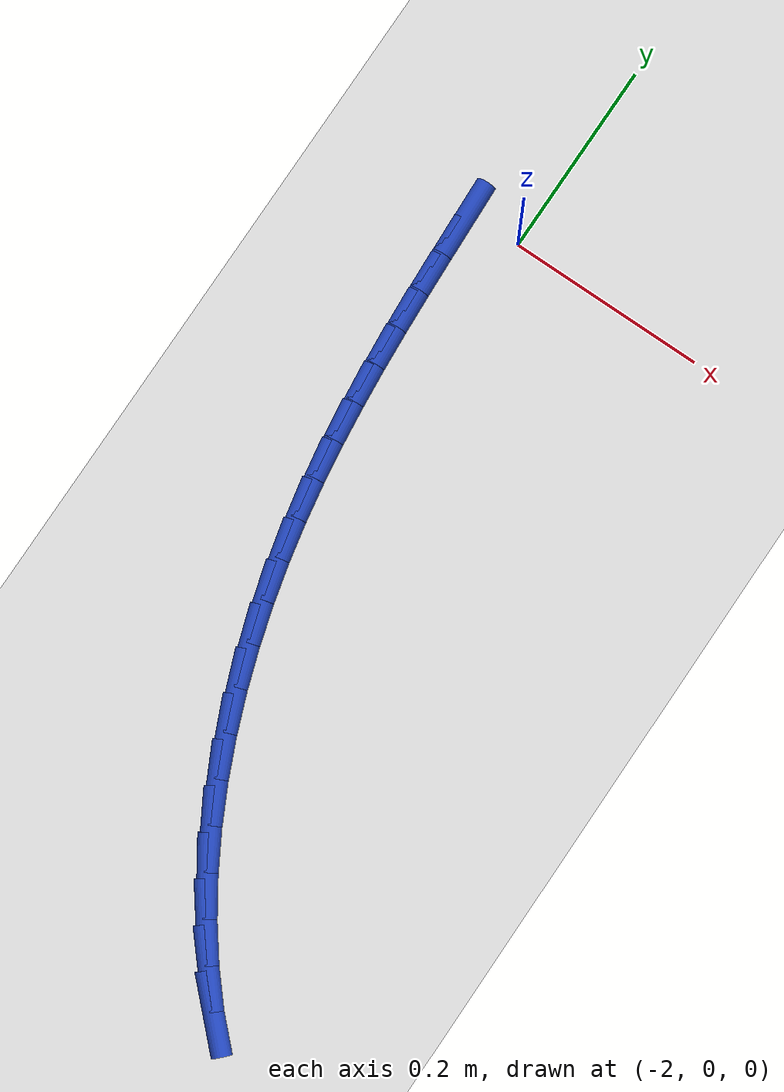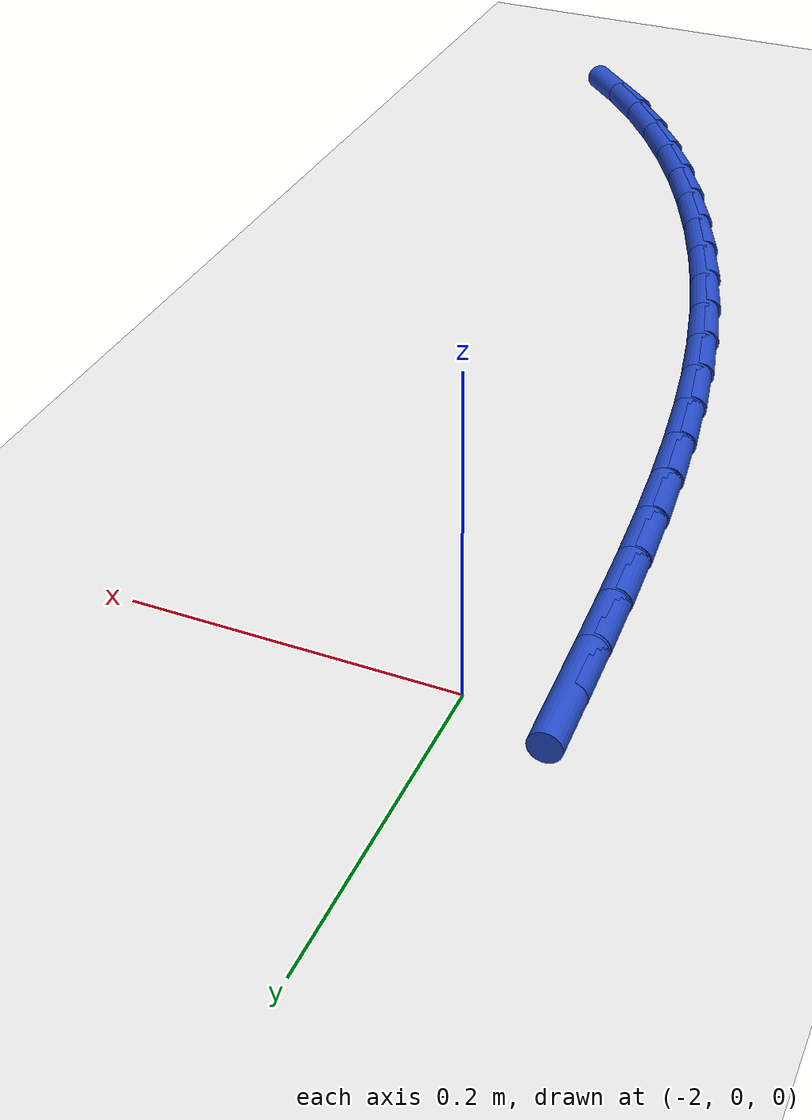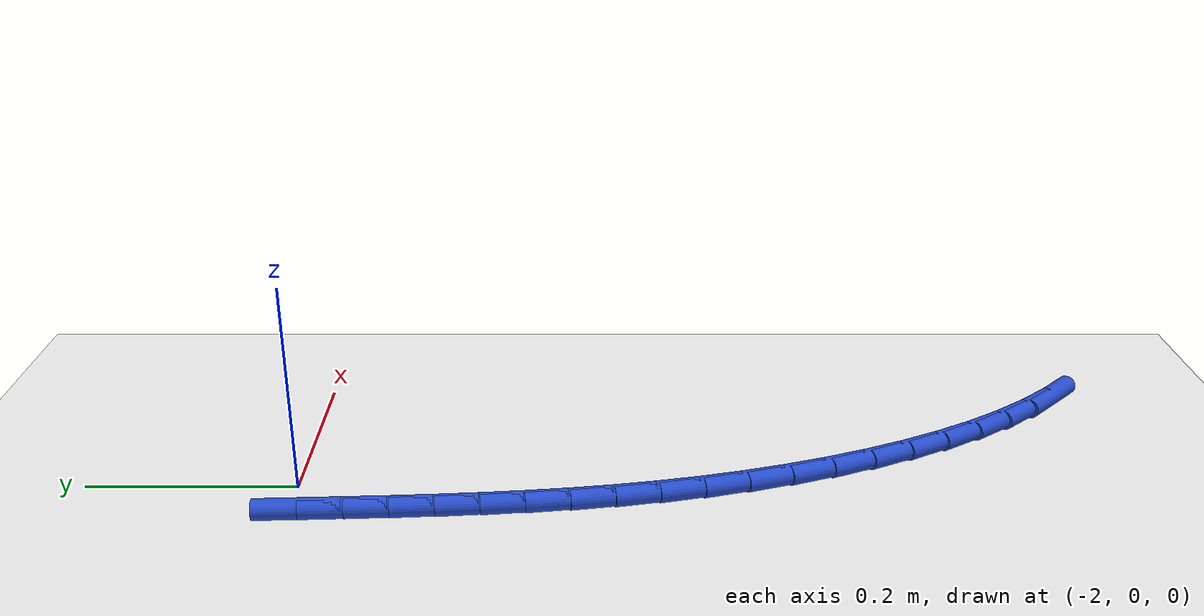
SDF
<sdf version="1.6">
 <world name="default">
  <model name="ground_plane">
   <static>1</static>
   <link name="link">
    <collision name="collision">
     <geometry><plane><normal>0 0 1</normal><size>100 100</size></plane></geometry>
     <surface><friction><ode><mu>100</mu><mu2>50</mu2></ode></friction></surface>
    </collision>
    <visual name="visual">
     <cast_shadows>0</cast_shadows>
     <geometry><plane><normal>0 0 1</normal><size>100 100</size></plane></geometry>
     <material>
      <script><uri>file://media/materials/scripts/gazebo.material</uri><name>Gazebo/WhiteGlow</name></script>
     </material>
    </visual>
   </link>
  </model>
  <model name="line">
   <link name="link_79">
    <pose>-2.0552303233472844 -0.009704864791919884 0.01 0 1.57 -1.5295927389093067</pose>
    <collision name="collision">
     <geometry><cylinder><radius>0.01</radius><length>0.08</length></cylinder></geometry>
    </collision>
    <visual name="visual">
     <material>
      <script><name>Gazebo/Blue</name><uri>file://media/materials/scripts/gazebo.material</uri></script>
     </material>
     <geometry><cylinder><radius>0.01</radius><length>0.08</length></cylinder></geometry>
    </visual>
   </link>
   <link name="link_80">
    <pose>-2.0535350056637443 -0.05082648214267887 0.01 0 1.57 -1.5245584961406977</pose>
    <collision name="collision">
     <geometry><cylinder><radius>0.01</radius><length>0.08</length></cylinder></geometry>
    </collision>
    <visual name="visual">
     <material>
      <script><name>Gazebo/Blue</name><uri>file://media/materials/scripts/gazebo.material</uri></script>
     </material>
     <geometry><cylinder><radius>0.01</radius><length>0.08</length></cylinder></geometry>
    </visual>
   </link>
   <link name="link_81">
    <pose>-2.051644971816539 -0.09167369975750679 0.01 0 1.57 -1.5149043902571218</pose>
    <collision name="collision">
     <geometry><cylinder><radius>0.01</radius><length>0.08</length></cylinder></geometry>
    </collision>
    <visual name="visual">
     <material>
      <script><name>Gazebo/Blue</name><uri>file://media/materials/scripts/gazebo.material</uri></script>
     </material>
     <geometry><cylinder><radius>0.01</radius><length>0.08</length></cylinder></geometry>
    </visual>
   </link>
   <link name="link_82">
    <pose>-2.0493716221930893 -0.1323053547961002 0.01 0 1.57 -1.5006148069085803</pose>
    <collision name="collision">
     <geometry><cylinder><radius>0.01</radius><length>0.08</length></cylinder></geometry>
    </collision>
    <visual name="visual">
     <material>
      <script><name>Gazebo/Blue</name><uri>file://media/materials/scripts/gazebo.material</uri></script>
     </material>
     <geometry><cylinder><radius>0.01</radius><length>0.08</length></cylinder></geometry>
    </visual>
   </link>
   <link name="link_83">
    <pose>-2.046526357180815 -0.1727802844181536 0.01 0 1.57 -1.4817298632818483</pose>
    <collision name="collision">
     <geometry><cylinder><radius>0.01</radius><length>0.08</length></cylinder></geometry>
    </collision>
    <visual name="visual">
     <material>
      <script><name>Gazebo/Blue</name><uri>file://media/materials/scripts/gazebo.material</uri></script>
     </material>
     <geometry><cylinder><radius>0.01</radius><length>0.08</length></cylinder></geometry>
    </visual>
   </link>
   <link name="link_84">
    <pose>-2.0429205771671386 -0.21315732578336355 0.01 0 1.57 -1.4583543766143099</pose>
    <collision name="collision">
     <geometry><cylinder><radius>0.01</radius><length>0.08</length></cylinder></geometry>
    </collision>
    <visual name="visual">
     <material>
      <script><name>Gazebo/Blue</name><uri>file://media/materials/scripts/gazebo.material</uri></script>
     </material>
     <geometry><cylinder><radius>0.01</radius><length>0.08</length></cylinder></geometry>
    </visual>
   </link>
   <link name="link_85">
    <pose>-2.03836568253948 -0.25349531605142595 0.01 0 1.57 -1.4306672078177467</pose>
    <collision name="collision">
     <geometry><cylinder><radius>0.01</radius><length>0.08</length></cylinder></geometry>
    </collision>
    <visual name="visual">
     <material>
      <script><name>Gazebo/Blue</name><uri>file://media/materials/scripts/gazebo.material</uri></script>
     </material>
     <geometry><cylinder><radius>0.01</radius><length>0.08</length></cylinder></geometry>
    </visual>
   </link>
   <link name="link_86">
    <pose>-2.0326730736852587 -0.2938530923820366 0.01 0 1.57 -1.3989294576645692</pose>
    <collision name="collision">
     <geometry><cylinder><radius>0.01</radius><length>0.08</length></cylinder></geometry>
    </collision>
    <visual name="visual">
     <material>
      <script><name>Gazebo/Blue</name><uri>file://media/materials/scripts/gazebo.material</uri></script>
     </material>
     <geometry><cylinder><radius>0.01</radius><length>0.08</length></cylinder></geometry>
    </visual>
   </link>
   <link name="link_87">
    <pose>-2.0256541509918966 -0.33428949193489216 0.01 0 1.57 -1.3634895980620447</pose>
    <collision name="collision">
     <geometry><cylinder><radius>0.01</radius><length>0.08</length></cylinder></geometry>
    </collision>
    <visual name="visual">
     <material>
      <script><name>Gazebo/Blue</name><uri>file://media/materials/scripts/gazebo.material</uri></script>
     </material>
     <geometry><cylinder><radius>0.01</radius><length>0.08</length></cylinder></geometry>
    </visual>
   </link>
   <link name="link_88">
    <pose>-2.0171203148468146 -0.37486335186968717 0.01 0 1.57 -1.3248055183553857</pose>
    <collision name="collision">
     <geometry><cylinder><radius>0.01</radius><length>0.08</length></cylinder></geometry>
    </collision>
    <visual name="visual">
     <material>
      <script><name>Gazebo/Blue</name><uri>file://media/materials/scripts/gazebo.material</uri></script>
     </material>
     <geometry><cylinder><radius>0.01</radius><length>0.08</length></cylinder></geometry>
    </visual>
   </link>
   <link name="link_89">
    <pose>-2.006884930258736 -0.4156294854614515 0.01 0 1.57 -1.284017848054148</pose>
    <collision name="collision">
     <geometry><cylinder><radius>0.01</radius><length>0.08</length></cylinder></geometry>
    </collision>
    <visual name="visual">
     <material>
      <script><name>Gazebo/Blue</name><uri>file://media/materials/scripts/gazebo.material</uri></script>
     </material>
     <geometry><cylinder><radius>0.01</radius><length>0.08</length></cylinder></geometry>
    </visual>
   </link>
   <link name="link_90">
    <pose>-1.9948332137677829 -0.456495541605483 0.01 0 1.57 -1.2417755521833076</pose>
    <collision name="collision">
     <geometry><cylinder><radius>0.01</radius><length>0.08</length></cylinder></geometry>
    </collision>
    <visual name="visual">
     <material>
      <script><name>Gazebo/Blue</name><uri>file://media/materials/scripts/gazebo.material</uri></script>
     </material>
     <geometry><cylinder><radius>0.01</radius><length>0.08</length></cylinder></geometry>
    </visual>
   </link>
   <link name="link_91">
    <pose>-1.980941184077019 -0.49718319064202726 0.01 0 1.57 -1.1975361343410482</pose>
    <collision name="collision">
     <geometry><cylinder><radius>0.01</radius><length>0.08</length></cylinder></geometry>
    </collision>
    <visual name="visual">
     <material>
      <script><name>Gazebo/Blue</name><uri>file://media/materials/scripts/gazebo.material</uri></script>
     </material>
     <geometry><cylinder><radius>0.01</radius><length>0.08</length></cylinder></geometry>
    </visual>
   </link>
   <link name="link_92">
    <pose>-1.9651906798578989 -0.5374021826081508 0.01 0 1.57 -1.1506833063366748</pose>
    <collision name="collision">
     <geometry><cylinder><radius>0.01</radius><length>0.08</length></cylinder></geometry>
    </collision>
    <visual name="visual">
     <material>
      <script><name>Gazebo/Blue</name><uri>file://media/materials/scripts/gazebo.material</uri></script>
     </material>
     <geometry><cylinder><radius>0.01</radius><length>0.08</length></cylinder></geometry>
    </visual>
   </link>
   <link name="link_93">
    <pose>-1.947563539781879 -0.5768622675409177 0.01 0 1.57 -1.10057914584763</pose>
    <collision name="collision">
     <geometry><cylinder><radius>0.01</radius><length>0.08</length></cylinder></geometry>
    </collision>
    <visual name="visual">
     <material>
      <script><name>Gazebo/Blue</name><uri>file://media/materials/scripts/gazebo.material</uri></script>
     </material>
     <geometry><cylinder><radius>0.01</radius><length>0.08</length></cylinder></geometry>
    </visual>
   </link>
   <link name="link_94">
    <pose>-1.9280416025204123 -0.6152731954773945 0.01 0 1.57 -1.0465576098694482</pose>
    <collision name="collision">
     <geometry><cylinder><radius>0.01</radius><length>0.08</length></cylinder></geometry>
    </collision>
    <visual name="visual">
     <material>
      <script><name>Gazebo/Blue</name><uri>file://media/materials/scripts/gazebo.material</uri></script>
     </material>
     <geometry><cylinder><radius>0.01</radius><length>0.08</length></cylinder></geometry>
    </visual>
   </link>
   <link name="link_95">
    <pose>-1.9066067067449548 -0.6523447164546466 0.01 0 1.57 -0.9879269164716659</pose>
    <collision name="collision">
     <geometry><cylinder><radius>0.01</radius><length>0.08</length></cylinder></geometry>
    </collision>
    <visual name="visual">
     <material>
      <script><name>Gazebo/Blue</name><uri>file://media/materials/scripts/gazebo.material</uri></script>
     </material>
     <geometry><cylinder><radius>0.01</radius><length>0.08</length></cylinder></geometry>
    </visual>
   </link>
   <link name="link_96">
    <pose>-1.8832406911269601 -0.6877865805097403 0.01 0 1.57 -0.9239847347639621</pose>
    <collision name="collision">
     <geometry><cylinder><radius>0.01</radius><length>0.08</length></cylinder></geometry>
    </collision>
    <visual name="visual">
     <material>
      <script><name>Gazebo/Blue</name><uri>file://media/materials/scripts/gazebo.material</uri></script>
     </material>
     <geometry><cylinder><radius>0.01</radius><length>0.08</length></cylinder></geometry>
    </visual>
   </link>
   <link name="link_97">
    <pose>-1.8579253943378837 -0.72130853767974 0.01 0 1.57 -0.8540518123667993</pose>
    <collision name="collision">
     <geometry><cylinder><radius>0.01</radius><length>0.08</length></cylinder></geometry>
    </collision>
    <visual name="visual">
     <material>
      <script><name>Gazebo/Blue</name><uri>file://media/materials/scripts/gazebo.material</uri></script>
     </material>
     <geometry><cylinder><radius>0.01</radius><length>0.08</length></cylinder></geometry>
    </visual>
   </link>
   <link name="link_98">
    <pose>-1.8306426550491806 -0.752620338001712 0.01 0 1.57 -0.7775307004159508</pose>
    <collision name="collision">
     <geometry><cylinder><radius>0.01</radius><length>0.08</length></cylinder></geometry>
    </collision>
    <visual name="visual">
     <material>
      <script><name>Gazebo/Blue</name><uri>file://media/materials/scripts/gazebo.material</uri></script>
     </material>
     <geometry><cylinder><radius>0.01</radius><length>0.08</length></cylinder></geometry>
    </visual>
   </link>
  </model>
 </world>
</sdf>
